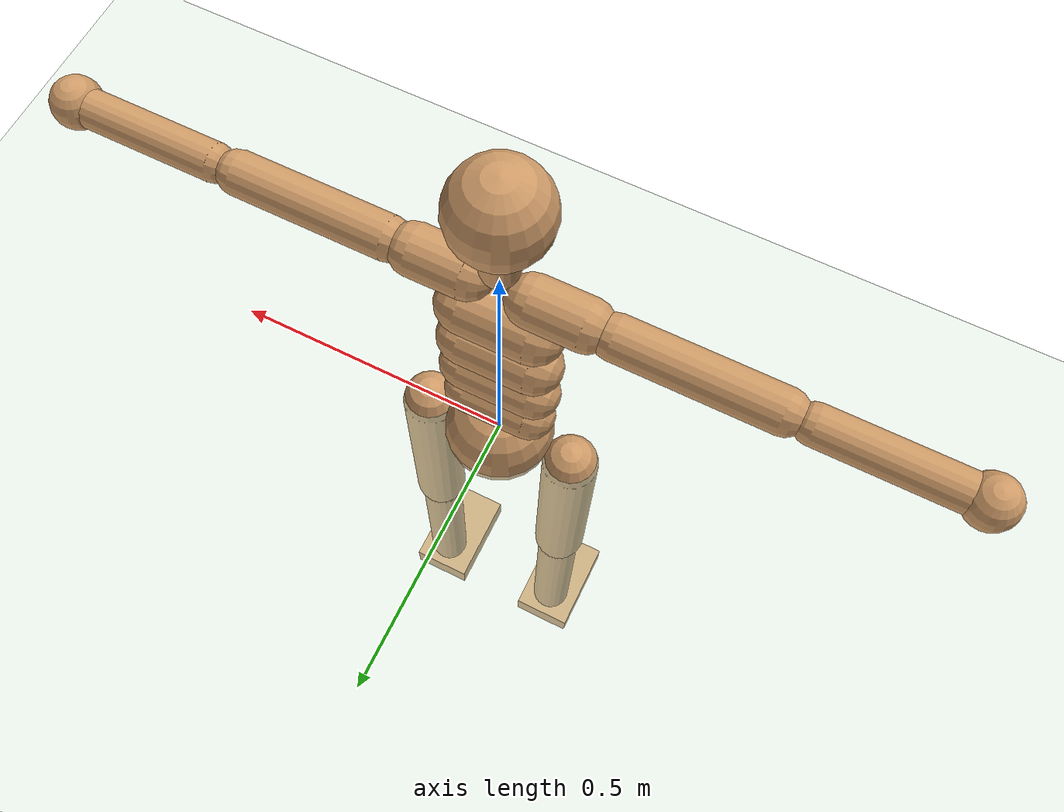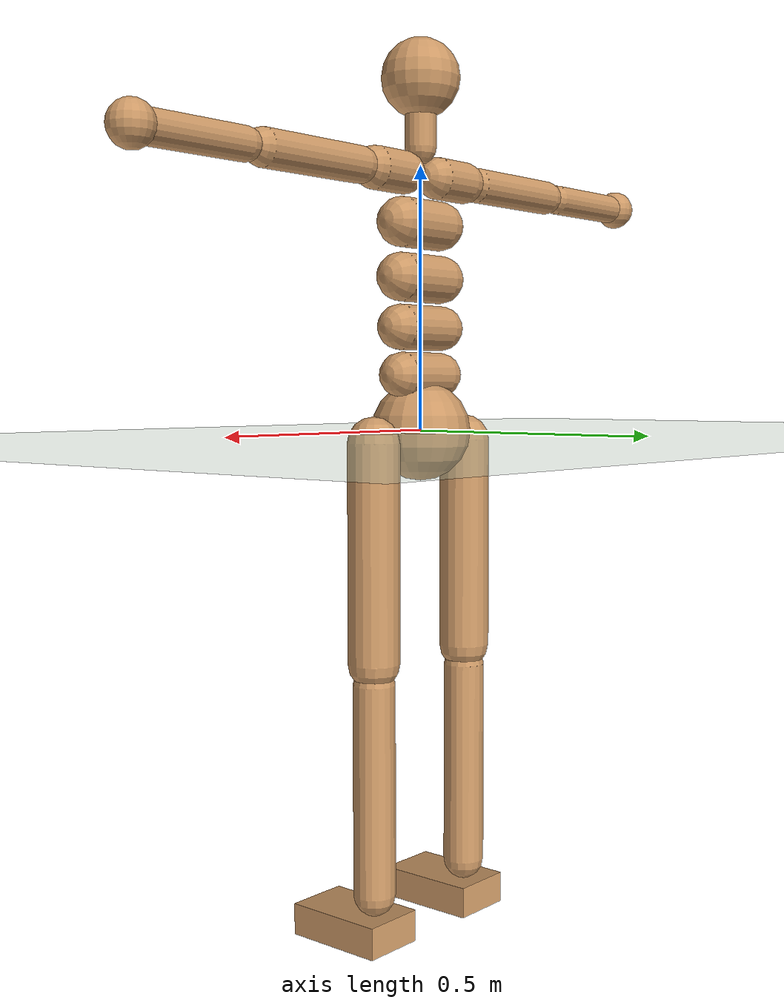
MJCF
<mujoco model="humanoid">
  <compiler angle="degree" inertiafromgeom="true" coordinate="global"/>
  <include file="./common/materials.xml"/>
  <visual>
    <headlight ambient=".4 .4 .4" diffuse=".8 .8 .8" specular="0.1 0.1 0.1"/>
    <map znear=".01"/>
    <quality shadowsize="2048"/>
  </visual>
  <default>
    <joint damping="0.0" armature="0.01" stiffness="0.0" limited="true"/>
    <geom conaffinity="7" condim="1" contype="7" margin="0.001" material="self" rgba="0.8 0.6 .4 1"/>
  </default>
  <statistic extent="3" center="0 0 1"/>
  <option timestep="0.00222222222"/>
  <asset>
    <texture type="skybox" file="./common/sky1.png" gridsize="3 4" gridlayout=".U..LFRB.D.." width="8192" height="8192"/>
    <texture builtin="flat" height="1278" mark="cross" markrgb="1 1 1" name="texgeom" random="0.01" rgb1=".8 .6 .4" rgb2=".8 .6 .4" type="cube" width="127"/>
  </asset>
  <worldbody>
    <light cutoff="100" diffuse="1 1 1" dir="-0 0 -1.3" directional="true" exponent="1" pos="0 0 1.3" specular=".1 .1 .1"/>
    <geom condim="3" friction="1. .1 .1" material="grid" name="floor" pos="0 0 0" rgba=".8 .9 .8 1" size="100 100 .2" type="plane"/>
    <body name="Hips" user="0.0000 0.0000 0.0000" pos="0.0000 0.0000 0.0000">
      <joint armature="0" damping="0" limited="false" name="Hips" pos="0.0000 0.0000 0.0000" stiffness="0" type="free"/>
      <geom pos="0.0000 0.0000 0.0000" size="0.0950" type="sphere"/>
      <body name="Spine" user="0.0000 0.0000 0.1514928" pos="0.0000 0.0000 0.0614928">
        <geom fromto="-0.0550 0.0000 0.1064928 0.0550 0.0000 0.1064928" size="0.0430" type="capsule"/>
        <joint axis="1.0000 0.0000 0.0000" name="Spine_x" pos="0.0000 0.0000 0.0614928" range="-30.0000 45.0000" type="hinge"/>
        <joint axis="0.0000 1.0000 0.0000" name="Spine_y" pos="0.0000 0.0000 0.0614928" range="-30.0000 30.0000" type="hinge"/>
        <joint axis="0.0000 0.0000 1.0000" name="Spine_z" pos="0.0000 0.0000 0.0614928" range="-30.0000 30.0000" type="hinge"/>
        <body name="Spine1" user="0.0000 0.0000 0.2414928" pos="0.0000 0.0000 0.1514928">
          <geom fromto="-0.0600 0.0000 0.1960 0.0600 0.0000 0.1960" size="0.0430" type="capsule"/>
          <joint axis="1.0000 0.0000 0.0000" name="Spine1_x" pos="0.0000 0.0000 0.1514928" range="-30.0000 45.0000" type="hinge"/>
          <joint axis="0.0000 1.0000 0.0000" name="Spine1_y" pos="0.0000 0.0000 0.1514928" range="-30.0000 30.0000" type="hinge"/>
          <joint axis="0.0000 0.0000 1.0000" name="Spine1_z" pos="0.0000 0.0000 0.1514928" range="-30.0000 30.0000" type="hinge"/>
          <body name="Spine2" user="0.0000 0.0000 0.3414928" pos="0.0000 0.0000 0.2414928">
            <geom fromto="-0.0575 0.0000 0.2896 0.0575 0.0000 0.2896" size="0.0460" type="capsule"/>
            <joint axis="1.0000 0.0000 0.0000" name="Spine2_x" pos="0.0000 0.0000 0.2414928" range="-30.0000 45.0000" type="hinge"/>
            <joint axis="0.0000 1.0000 0.0000" name="Spine2_y" pos="0.0000 0.0000 0.2414928" range="-30.0000 30.0000" type="hinge"/>
            <joint axis="0.0000 0.0000 1.0000" name="Spine2_z" pos="0.0000 0.0000 0.2414928" range="-30.0000 30.0000" type="hinge"/>
            <body name="Spine3" user="0.0000 0.0000 0.49700757" pos="0.0000 0.0000 0.3414928">
              <geom fromto="-0.0550 0.0000 0.3914 0.0550 0.0000 0.3914" size="0.0470" type="capsule"/>
              <joint axis="1.0000 0.0000 0.0000" name="Spine3_x" pos="0.0000 0.0000 0.3414928" range="-30.0000 45.0000" type="hinge"/>
              <joint axis="0.0000 1.0000 0.0000" name="Spine3_y" pos="0.0000 0.0000 0.3414928" range="-30.0000 30.0000" type="hinge"/>
              <joint axis="0.0000 0.0000 1.0000" name="Spine3_z" pos="0.0000 0.0000 0.3414928" range="-30.0000 30.0000" type="hinge"/>
              <body name="Neck" user="0.0000 0.0000 0.68141895" pos="0.0000 0.0000 0.49700757">
                <joint axis="1.0000 0.0000 0.0000" name="Neck_x" pos="0.0000 0.0000 0.5579" range="-30.0000 45.0000" type="hinge"/>
                <joint axis="0.0000 1.0000 0.0000" name="Neck_y" pos="0.0000 0.0000 0.5579" range="-30.0000 30.0000" type="hinge"/>
                <joint axis="0.0000 0.0000 1.0000" name="Neck_z" pos="0.0000 0.0000 0.5579" range="-30.0000 30.0000" type="hinge"/>
                <geom fromto="0.0000 0.0000 0.5336 0.0000 0.0000 0.6131" size="0.0300" type="capsule"/>
                <body name="Head" user="0.0000 0.0000 0.8188" pos="0.0000 0.0000 0.68141895">
                  <geom pos="0.0000 0.0000 0.6628" size="0.0750" type="sphere"/>
                  <joint axis="1.0000 0.0000 0.0000" name="Head_x" pos="0.0000 0.0000 0.68141895" range="-30.0000 45.0000" type="hinge"/>
                  <joint axis="0.0000 1.0000 0.0000" name="Head_y" pos="0.0000 0.0000 0.68141895" range="-30.0000 30.0000" type="hinge"/>
                  <joint axis="0.0000 0.0000 1.0000" name="Head_z" pos="0.0000 0.0000 0.68141895" range="-30.0000 30.0000" type="hinge"/>
                </body>
              </body>
              <body name="RightShoulder" user="-0.1505 0.0000 0.4821" pos="-0.0286 0.0000 0.4821">
                <joint axis="1.0000 0.0000 0.0000" name="RightShoulder_x" pos="-0.0286 0.0000 0.4821" range="-20.0000 20.0000" type="hinge"/>
                <joint axis="0.0000 1.0000 0.0000" name="RightShoulder_y" pos="-0.0286 0.0000 0.4821" range="-20.0000 20.0000" type="hinge"/>
                <joint axis="0.0000 0.0000 1.0000" name="RightShoulder_z" pos="-0.0286 0.0000 0.4821" range="-20.0000 20.0000" type="hinge"/>
                <geom fromto="-0.0486 0.0000 0.4821 -0.1305 0.0000 0.4821" size="0.0400" type="capsule"/>
                <body name="RightArm" user="-0.4303 0.0000 0.4821" pos="-0.1505 0.0000 0.4821">
                  <joint axis="1.0000 0.0000 0.0000" name="RightArm_x" pos="-0.1505 0.0000 0.4821" range="-90.0000 90.0000" type="hinge"/>
                  <joint axis="0.0000 1.0000 0.0000" name="RightArm_y" pos="-0.1505 0.0000 0.4821" range="-90.0000 90.0000" type="hinge"/>
                  <joint axis="0.0000 0.0000 1.0000" name="RightArm_z" pos="-0.1505 0.0000 0.4821" range="-60.0000 90.0000" type="hinge"/>
                  <geom fromto="-0.1708 0.0000 0.4821 -0.4103 0.0000 0.4821" size="0.0340" type="capsule"/>
                  <body name="RightForeArm" user="-0.6803 0.0000 0.4821" pos="-0.4303 0.0000 0.4821">
                    <joint axis="0.0000 0.0000 1.0000" name="RightForeArm_z" pos="-0.4303 0.0000 0.4821" range="-10.0000 170.0000" type="hinge"/>
                    <geom fromto="-0.4503 0.0000 0.4821 -0.6603 0.0000 0.4821" size="0.0300" type="capsule"/>
                    <body name="RightHand" user="-0.7282 0.0000 0.4821" pos="-0.6803 0.0000 0.4821">
                      <geom pos="-0.6843 0.0000 0.4821" size="0.0400" type="sphere"/>
                      <joint axis="1.0000 0.0000 0.0000" name="RightHand_x" pos="-0.6803 0.0000 0.4821" range="-90.0000 90.0000" type="hinge"/>
                      <joint axis="0.0000 1.0000 0.0000" name="RightHand_y" pos="-0.6803 0.0000 0.4821" range="-90.0000 90.0000" type="hinge"/>
                      <joint axis="0.0000 0.0000 1.0000" name="RightHand_z" pos="-0.6803 0.0000 0.4821" range="-90.0000 90.0000" type="hinge"/>
                    </body>
                  </body>
                </body>
              </body>
              <body name="LeftShoulder" user="0.1505 0.0000 0.4821" pos="0.0286 0.0000 0.4821">
                <joint axis="1.0000 0.0000 0.0000" name="LeftShoulder_x" pos="0.0286 0.0000 0.4821" range="-20.0000 20.0000" type="hinge"/>
                <joint axis="0.0000 1.0000 0.0000" name="LeftShoulder_y" pos="0.0286 0.0000 0.4821" range="-20.0000 20.0000" type="hinge"/>
                <joint axis="0.0000 0.0000 1.0000" name="LeftShoulder_z" pos="0.0286 0.0000 0.4821" range="-20.0000 20.0000" type="hinge"/>
                <geom fromto="0.0486 0.0000 0.4821 0.1305 0.0000 0.4821" size="0.0400" type="capsule"/>
                <body name="LeftArm" user="0.4303 0.0000 0.4821" pos="0.1505 0.0000 0.4821">
                  <joint axis="1.0000 0.0000 0.0000" name="LeftArm_x" pos="0.1505 0.0000 0.4821" range="-90.0000 90.0000" type="hinge"/>
                  <joint axis="0.0000 1.0000 0.0000" name="LeftArm_y" pos="0.1505 0.0000 0.4821" range="-90.0000 90.0000" type="hinge"/>
                  <joint axis="0.0000 0.0000 1.0000" name="LeftArm_z" pos="0.1505 0.0000 0.4821" range="-90.0000 60.0000" type="hinge"/>
                  <geom fromto="0.1708 0.0000 0.4821 0.4103 0.0000 0.4821" size="0.0340" type="capsule"/>
                  <body name="LeftForeArm" user="0.6803 0.0000 0.4821" pos="0.4303 0.0000 0.4821">
                    <joint axis="0.0000 0.0000 1.0000" name="LeftForeArm_z" pos="0.4303 0.0000 0.4821" range="-170.0000 10.0000" type="hinge"/>
                    <geom fromto="0.4503 0.0000 0.4821 0.6603 0.0000 0.4821" size="0.0300" type="capsule"/>
                    <body name="LeftHand" user="0.7282 0.0000 0.4821" pos="0.6803 0.0000 0.4821">
                      <geom pos="0.6843 0.0000 0.4821" size="0.0400" type="sphere"/>
                      <joint axis="1.0000 0.0000 0.0000" name="LeftHand_x" pos="0.6803 0.0000 0.4821" range="-90.0000 90.0000" type="hinge"/>
                      <joint axis="0.0000 1.0000 0.0000" name="LeftHand_y" pos="0.6803 0.0000 0.4821" range="-90.0000 90.0000" type="hinge"/>
                      <joint axis="0.0000 0.0000 1.0000" name="LeftHand_z" pos="0.6803 0.0000 0.4821" range="-90.0000 90.0000" type="hinge"/>
                    </body>
                  </body>
                </body>
              </body>
            </body>
          </body>
        </body>
      </body>
      <body name="RightUpLeg" user="-0.13545777 0.0000 -0.45170122" pos="-0.13545777 0.0000 -0.0000">
        <joint axis="1.0000 0.0000 0.0000" name="RightUpLeg_x" pos="-0.13545777 0.0000 -0.0000" range="-170.0000 20.0000" type="hinge"/>
        <joint axis="0.0000 1.0000 0.0000" name="RightUpLeg_y" pos="-0.13545777 0.0000 -0.0000" range="-40.0000 90.0000" type="hinge"/>
        <joint axis="0.0000 0.0000 1.0000" name="RightUpLeg_z" pos="-0.13545777 0.0000 -0.0000" range="-70.0000 70.0000" type="hinge"/>
        <geom fromto="-0.13545777 0.0000 -0.0200 -0.13545777 0.0000 -0.43170122" size="0.0490" type="capsule"/>
        <body name="RightLeg" user="-0.13545777 0.0000 -0.89865848" pos="-0.13545777 0.0000 -0.45170122">
          <joint axis="1.0000 0.0000 0.0000" name="RightLeg_x" pos="-0.13545777 0.0000 -0.45170122" range="0.0000 170.0000" type="hinge"/>
          <geom contype="1" conaffinity="1" fromto="-0.13545777 0.0000 -0.47170122 -0.13545777 0.0000 -0.87165848" size="0.0400" type="capsule"/>
          <body name="RightFoot" user="-0.13545777 -0.1308 -0.9597" pos="-0.13545777 0.0000 -0.89865848">
            <geom contype="1" conaffinity="1" pos="-0.13545777 -0.0514 -0.93865848" size="0.0620 0.1000 0.0300" quat="1.0000 -0.0000 -0.0000 -0.0000" type="box"/>
            <joint axis="1.0000 0.0000 0.0000" name="RightFoot_x" pos="-0.13545777 0.0000 -0.89865848" range="-60.0000 60.0000" type="hinge"/>
            <joint axis="0.0000 1.0000 0.0000" name="RightFoot_y" pos="-0.13545777 0.0000 -0.89865848" range="-60.0000 60.0000" type="hinge"/>
            <joint axis="0.0000 0.0000 1.0000" name="RightFoot_z" pos="-0.13545777 0.0000 -0.89865848" range="-60.0000 60.0000" type="hinge"/>
          </body>
        </body>
      </body>
      <body name="LeftUpLeg" user="0.13545777 0.0000 -0.45170122" pos="0.13545777 0.0000 -0.0000">
        <joint axis="1.0000 0.0000 0.0000" name="LeftUpLeg_x" pos="0.13545777 0.0000 -0.0000" range="-170.0000 20.0000" type="hinge"/>
        <joint axis="0.0000 1.0000 0.0000" name="LeftUpLeg_y" pos="0.13545777 0.0000 -0.0000" range="-90.0000 40.0000" type="hinge"/>
        <joint axis="0.0000 0.0000 1.0000" name="LeftUpLeg_z" pos="0.13545777 0.0000 -0.0000" range="-70.0000 70.0000" type="hinge"/>
        <geom fromto="0.13545777 0.0000 -0.0200 0.13545777 0.0000 -0.43170122" size="0.0490" type="capsule"/>
        <body name="LeftLeg" user="0.13545777 0.0000 -0.89865848" pos="0.13545777 0.0000 -0.45170122">
          <joint axis="1.0000 0.0000 0.0000" name="LeftLeg_x" pos="0.13545777 0.0000 -0.45170122" range="0.0000 170.0000" type="hinge"/>
          <geom contype="2" conaffinity="2" fromto="0.13545777 0.0000 -0.47170122 0.13545777 0.0000 -0.87165848" size="0.0400" type="capsule"/>
          <body name="LeftFoot" user="0.13545777 -0.1308 -0.9597" pos="0.13545777 0.0000 -0.89865848">
            <geom contype="2" conaffinity="2" pos="0.13545777 -0.0514 -0.93865848" size="0.0620 0.1000 0.0300" quat="1.0000 -0.0000 -0.0000 0.0000" type="box"/>
            <joint axis="1.0000 0.0000 0.0000" name="LeftFoot_x" pos="0.13545777 0.0000 -0.89865848" range="-60.0000 60.0000" type="hinge"/>
            <joint axis="0.0000 1.0000 0.0000" name="LeftFoot_y" pos="0.13545777 0.0000 -0.89865848" range="-60.0000 60.0000" type="hinge"/>
            <joint axis="0.0000 0.0000 1.0000" name="LeftFoot_z" pos="0.13545777 0.0000 -0.89865848" range="-60.0000 60.0000" type="hinge"/>
          </body>
        </body>
      </body>
    </body>
  </worldbody>
  <actuator>
    <motor gear="1" joint="Spine_x" name="Spine_x"/>
    <motor gear="1" joint="Spine_y" name="Spine_y"/>
    <motor gear="1" joint="Spine_z" name="Spine_z"/>
    <motor gear="1" joint="Spine1_x" name="Spine1_x"/>
    <motor gear="1" joint="Spine1_y" name="Spine1_y"/>
    <motor gear="1" joint="Spine1_z" name="Spine1_z"/>
    <motor gear="1" joint="Spine2_x" name="Spine2_x"/>
    <motor gear="1" joint="Spine2_y" name="Spine2_y"/>
    <motor gear="1" joint="Spine2_z" name="Spine2_z"/>
    <motor gear="1" joint="Spine3_x" name="Spine3_x"/>
    <motor gear="1" joint="Spine3_y" name="Spine3_y"/>
    <motor gear="1" joint="Spine3_z" name="Spine3_z"/>
    <motor gear="1" joint="Neck_x" name="Neck_x"/>
    <motor gear="1" joint="Neck_y" name="Neck_y"/>
    <motor gear="1" joint="Neck_z" name="Neck_z"/>
    <motor gear="1" joint="Head_x" name="Head_x"/>
    <motor gear="1" joint="Head_y" name="Head_y"/>
    <motor gear="1" joint="Head_z" name="Head_z"/>
    <motor gear="1" joint="RightShoulder_x" name="RightShoulder_x"/>
    <motor gear="1" joint="RightShoulder_y" name="RightShoulder_y"/>
    <motor gear="1" joint="RightShoulder_z" name="RightShoulder_z"/>
    <motor gear="1" joint="RightArm_x" name="RightArm_x"/>
    <motor gear="1" joint="RightArm_y" name="RightArm_y"/>
    <motor gear="1" joint="RightArm_z" name="RightArm_z"/>
    <motor gear="1" joint="RightForeArm_z" name="RightForeArm_z"/>
    <motor gear="1" joint="RightHand_x" name="RightHand_x"/>
    <motor gear="1" joint="RightHand_y" name="RightHand_y"/>
    <motor gear="1" joint="RightHand_z" name="RightHand_z"/>
    <motor gear="1" joint="LeftShoulder_x" name="LeftShoulder_x"/>
    <motor gear="1" joint="LeftShoulder_y" name="LeftShoulder_y"/>
    <motor gear="1" joint="LeftShoulder_z" name="LeftShoulder_z"/>
    <motor gear="1" joint="LeftArm_x" name="LeftArm_x"/>
    <motor gear="1" joint="LeftArm_y" name="LeftArm_y"/>
    <motor gear="1" joint="LeftArm_z" name="LeftArm_z"/>
    <motor gear="1" joint="LeftForeArm_z" name="LeftForeArm_z"/>
    <motor gear="1" joint="LeftHand_x" name="LeftHand_x"/>
    <motor gear="1" joint="LeftHand_y" name="LeftHand_y"/>
    <motor gear="1" joint="LeftHand_z" name="LeftHand_z"/>
    <motor gear="1" joint="RightUpLeg_x" name="RightUpLeg_x"/>
    <motor gear="1" joint="RightUpLeg_y" name="RightUpLeg_y"/>
    <motor gear="1" joint="RightUpLeg_z" name="RightUpLeg_z"/>
    <motor gear="1" joint="RightLeg_x" name="RightLeg_x"/>
    <motor gear="1" joint="RightFoot_x" name="RightFoot_x"/>
    <motor gear="1" joint="RightFoot_y" name="RightFoot_y"/>
    <motor gear="1" joint="RightFoot_z" name="RightFoot_z"/>
    <motor gear="1" joint="LeftUpLeg_x" name="LeftUpLeg_x"/>
    <motor gear="1" joint="LeftUpLeg_y" name="LeftUpLeg_y"/>
    <motor gear="1" joint="LeftUpLeg_z" name="LeftUpLeg_z"/>
    <motor gear="1" joint="LeftLeg_x" name="LeftLeg_x"/>
    <motor gear="1" joint="LeftFoot_x" name="LeftFoot_x"/>
    <motor gear="1" joint="LeftFoot_y" name="LeftFoot_y"/>
    <motor gear="1" joint="LeftFoot_z" name="LeftFoot_z"/>
  </actuator>
</mujoco>

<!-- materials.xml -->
<!--
Common textures, colors and materials to be used throughout this suite. Some
materials such as xxx_highlight are activated on occurence of certain events,
for example receiving a positive reward.
-->
<mujoco>
  <asset>
    <texture name="grid" type="2d" builtin="checker" rgb1=".1 .2 .3" rgb2=".2 .3 .4" width="300" height="300" mark="edge" markrgb=".2 .3 .4"/>
    <texture builtin="checker" height="100" name="texplane" rgb1="0 0 0" rgb2=".8 .8 .8" type="2d" width="100"/>
    <texture name="grass" file="./common/grass.png" type="2d"/>
    <material name="grid" texture="grid" texrepeat="1 1" texuniform="true" reflectance=".2"/>
    <material name="MatPlane" reflectance="0.5" shininess="1" specular="1" texrepeat="60 60" texture="texplane"/>
    <material name="GrassPlane" reflectance="0.0" shininess="1" specular="1" texrepeat="400 400" texture="grass"/>
    <material name="self" rgba=".7 .5 .3 1"/>
    <material name="self_default" rgba=".7 .5 .3 1"/>
    <material name="self_highlight" rgba="0 .5 .3 1"/>
    <material name="effector" rgba=".7 .4 .2 1"/>
    <material name="effector_default" rgba=".7 .4 .2 1"/>
    <material name="effector_highlight" rgba="0 .5 .3 1"/>
    <material name="decoration" rgba=".3 .5 .7 1"/>
    <material name="eye" rgba="0 .2 1 1"/>
    <material name="target" rgba=".6 .3 .3 1"/>
    <material name="target_default" rgba=".6 .3 .3 1"/>
    <material name="target_highlight" rgba=".6 .3 .3 .4"/>
    <material name="expert" rgba=".6 .3 .3 .4"/>
  </asset>
</mujoco>
